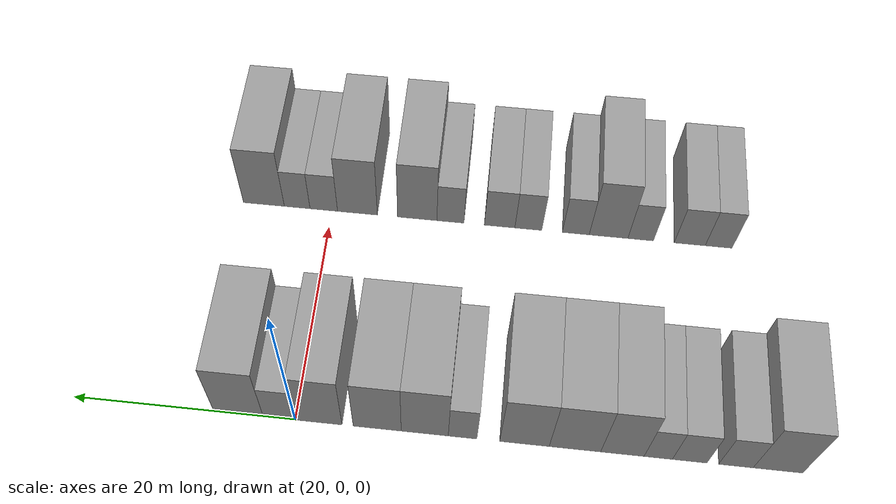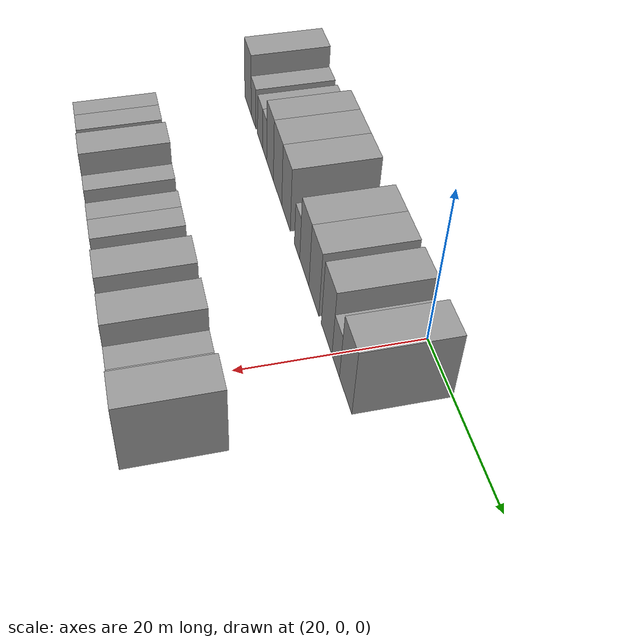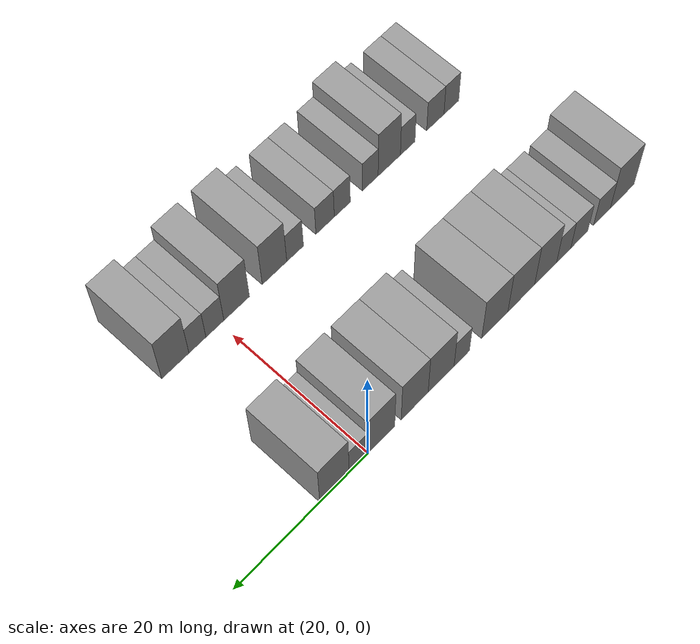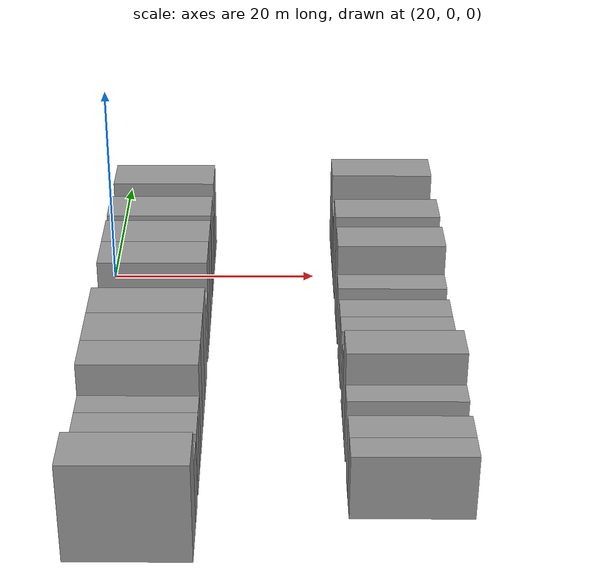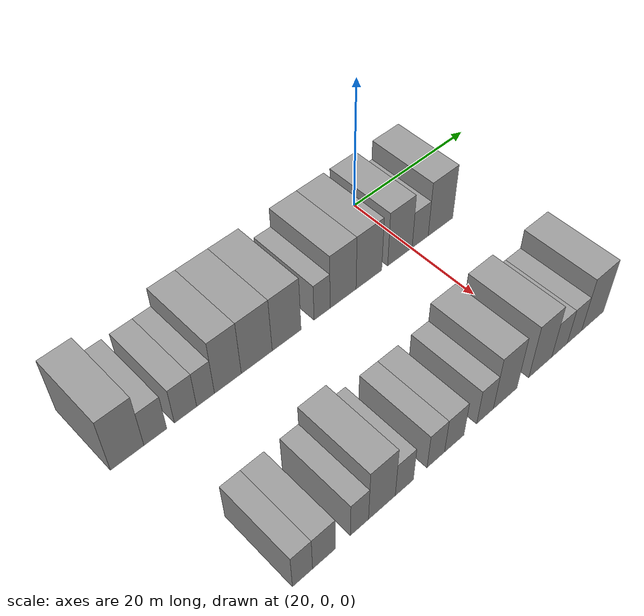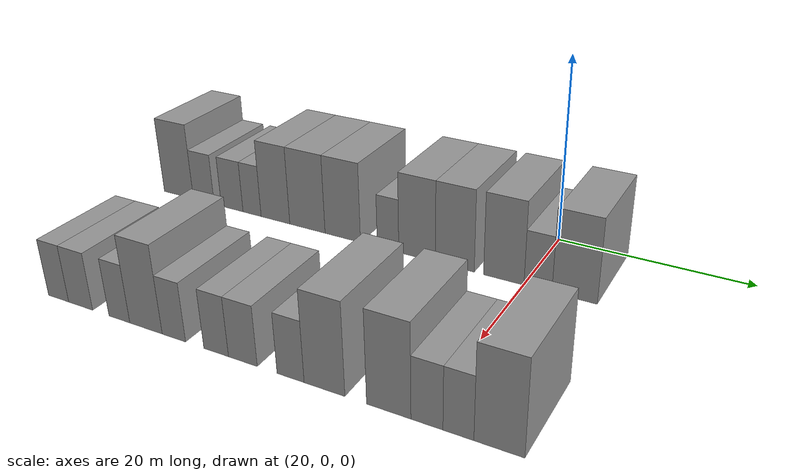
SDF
<sdf version="1.6">
 <world name="default">
  <model name="building_39">
   <static>1</static>
   <pose>25.0000 -42.1483 0 0.000000 0.000000 0.000000</pose>
   <link name="link">
    <pose>0 0 4.50 0 0 0</pose>
    <collision name="collision"><geometry><box><size>10.0000 4.2184 9.0000</size></box></geometry></collision>
    <visual name="visual">
     <cast_shadows>0</cast_shadows>
     <geometry><box><size>10.0000 4.2184 9.0000</size></box></geometry>
     <material>
      <script>
       <uri>model://grey_wall/materials/scripts</uri>
       <uri>model://grey_wall/materials/textures</uri>
       <name>vrc/grey_wall</name>
      </script>
     </material>
    </visual>
   </link>
  </model>
  <model name="building_40">
   <static>1</static>
   <pose>25.0000 -38.5617 0 0.000000 0.000000 0.000000</pose>
   <link name="link">
    <pose>0 0 3.00 0 0 0</pose>
    <collision name="collision"><geometry><box><size>10.0000 2.9548 6.0000</size></box></geometry></collision>
    <visual name="visual">
     <cast_shadows>0</cast_shadows>
     <geometry><box><size>10.0000 2.9548 6.0000</size></box></geometry>
     <material>
      <script>
       <uri>model://grey_wall/materials/scripts</uri>
       <uri>model://grey_wall/materials/textures</uri>
       <name>vrc/grey_wall</name>
      </script>
     </material>
    </visual>
   </link>
  </model>
  <model name="building_41">
   <static>1</static>
   <pose>25.0000 -34.5960 0 0.000000 0.000000 0.000000</pose>
   <link name="link">
    <pose>0 0 3.00 0 0 0</pose>
    <collision name="collision"><geometry><box><size>10.0000 2.9766 6.0000</size></box></geometry></collision>
    <visual name="visual">
     <cast_shadows>0</cast_shadows>
     <geometry><box><size>10.0000 2.9766 6.0000</size></box></geometry>
     <material>
      <script>
       <uri>model://grey_wall/materials/scripts</uri>
       <uri>model://grey_wall/materials/textures</uri>
       <name>vrc/grey_wall</name>
      </script>
     </material>
    </visual>
   </link>
  </model>
  <model name="building_42">
   <static>1</static>
   <pose>25.0000 -31.8885 0 0.000000 0.000000 0.000000</pose>
   <link name="link">
    <pose>0 0 3.00 0 0 0</pose>
    <collision name="collision"><geometry><box><size>10.0000 2.4384 6.0000</size></box></geometry></collision>
    <visual name="visual">
     <cast_shadows>0</cast_shadows>
     <geometry><box><size>10.0000 2.4384 6.0000</size></box></geometry>
     <material>
      <script>
       <uri>model://grey_wall/materials/scripts</uri>
       <uri>model://grey_wall/materials/textures</uri>
       <name>vrc/grey_wall</name>
      </script>
     </material>
    </visual>
   </link>
  </model>
  <model name="building_43">
   <static>1</static>
   <pose>25.0000 -28.7866 0 0.000000 0.000000 0.000000</pose>
   <link name="link">
    <pose>0 0 4.50 0 0 0</pose>
    <collision name="collision"><geometry><box><size>10.0000 3.7654 9.0000</size></box></geometry></collision>
    <visual name="visual">
     <cast_shadows>0</cast_shadows>
     <geometry><box><size>10.0000 3.7654 9.0000</size></box></geometry>
     <material>
      <script>
       <uri>model://grey_wall/materials/scripts</uri>
       <uri>model://grey_wall/materials/textures</uri>
       <name>vrc/grey_wall</name>
      </script>
     </material>
    </visual>
   </link>
  </model>
  <model name="building_44">
   <static>1</static>
   <pose>25.0000 -24.6649 0 0.000000 0.000000 0.000000</pose>
   <link name="link">
    <pose>0 0 4.50 0 0 0</pose>
    <collision name="collision"><geometry><box><size>10.0000 4.4779 9.0000</size></box></geometry></collision>
    <visual name="visual">
     <cast_shadows>0</cast_shadows>
     <geometry><box><size>10.0000 4.4779 9.0000</size></box></geometry>
     <material>
      <script>
       <uri>model://grey_wall/materials/scripts</uri>
       <uri>model://grey_wall/materials/textures</uri>
       <name>vrc/grey_wall</name>
      </script>
     </material>
    </visual>
   </link>
  </model>
  <model name="building_45">
   <static>1</static>
   <pose>25.0000 -20.2596 0 0.000000 0.000000 0.000000</pose>
   <link name="link">
    <pose>0 0 4.50 0 0 0</pose>
    <collision name="collision"><geometry><box><size>10.0000 4.3327 9.0000</size></box></geometry></collision>
    <visual name="visual">
     <cast_shadows>0</cast_shadows>
     <geometry><box><size>10.0000 4.3327 9.0000</size></box></geometry>
     <material>
      <script>
       <uri>model://grey_wall/materials/scripts</uri>
       <uri>model://grey_wall/materials/textures</uri>
       <name>vrc/grey_wall</name>
      </script>
     </material>
    </visual>
   </link>
  </model>
  <model name="building_46">
   <static>1</static>
   <pose>25.0000 -14.8365 0 0.000000 0.000000 0.000000</pose>
   <link name="link">
    <pose>0 0 3.00 0 0 0</pose>
    <collision name="collision"><geometry><box><size>10.0000 2.5137 6.0000</size></box></geometry></collision>
    <visual name="visual">
     <cast_shadows>0</cast_shadows>
     <geometry><box><size>10.0000 2.5137 6.0000</size></box></geometry>
     <material>
      <script>
       <uri>model://grey_wall/materials/scripts</uri>
       <uri>model://grey_wall/materials/textures</uri>
       <name>vrc/grey_wall</name>
      </script>
     </material>
    </visual>
   </link>
  </model>
  <model name="building_47">
   <static>1</static>
   <pose>25.0000 -11.5016 0 0.000000 0.000000 0.000000</pose>
   <link name="link">
    <pose>0 0 4.50 0 0 0</pose>
    <collision name="collision"><geometry><box><size>10.0000 4.1561 9.0000</size></box></geometry></collision>
    <visual name="visual">
     <cast_shadows>0</cast_shadows>
     <geometry><box><size>10.0000 4.1561 9.0000</size></box></geometry>
     <material>
      <script>
       <uri>model://grey_wall/materials/scripts</uri>
       <uri>model://grey_wall/materials/textures</uri>
       <name>vrc/grey_wall</name>
      </script>
     </material>
    </visual>
   </link>
  </model>
  <model name="building_48">
   <static>1</static>
   <pose>25.0000 -7.2964 0 0.000000 0.000000 0.000000</pose>
   <link name="link">
    <pose>0 0 4.50 0 0 0</pose>
    <collision name="collision"><geometry><box><size>10.0000 4.2544 9.0000</size></box></geometry></collision>
    <visual name="visual">
     <cast_shadows>0</cast_shadows>
     <geometry><box><size>10.0000 4.2544 9.0000</size></box></geometry>
     <material>
      <script>
       <uri>model://grey_wall/materials/scripts</uri>
       <uri>model://grey_wall/materials/textures</uri>
       <name>vrc/grey_wall</name>
      </script>
     </material>
    </visual>
   </link>
  </model>
  <model name="building_49">
   <static>1</static>
   <pose>25.0000 -2.0602 0 0.000000 0.000000 0.000000</pose>
   <link name="link">
    <pose>0 0 4.50 0 0 0</pose>
    <collision name="collision"><geometry><box><size>10.0000 4.2179 9.0000</size></box></geometry></collision>
    <visual name="visual">
     <cast_shadows>0</cast_shadows>
     <geometry><box><size>10.0000 4.2179 9.0000</size></box></geometry>
     <material>
      <script>
       <uri>model://grey_wall/materials/scripts</uri>
       <uri>model://grey_wall/materials/textures</uri>
       <name>vrc/grey_wall</name>
      </script>
     </material>
    </visual>
   </link>
  </model>
  <model name="building_50">
   <static>1</static>
   <pose>25.0000 1.4626 0 0.000000 0.000000 0.000000</pose>
   <link name="link">
    <pose>0 0 3.00 0 0 0</pose>
    <collision name="collision"><geometry><box><size>10.0000 2.8276 6.0000</size></box></geometry></collision>
    <visual name="visual">
     <cast_shadows>0</cast_shadows>
     <geometry><box><size>10.0000 2.8276 6.0000</size></box></geometry>
     <material>
      <script>
       <uri>model://grey_wall/materials/scripts</uri>
       <uri>model://grey_wall/materials/textures</uri>
       <name>vrc/grey_wall</name>
      </script>
     </material>
    </visual>
   </link>
  </model>
  <model name="building_51">
   <static>1</static>
   <pose>25.0000 5.0964 0 0.000000 0.000000 0.000000</pose>
   <link name="link">
    <pose>0 0 4.50 0 0 0</pose>
    <collision name="collision"><geometry><box><size>10.0000 4.4400 9.0000</size></box></geometry></collision>
    <visual name="visual">
     <cast_shadows>0</cast_shadows>
     <geometry><box><size>10.0000 4.4400 9.0000</size></box></geometry>
     <material>
      <script>
       <uri>model://grey_wall/materials/scripts</uri>
       <uri>model://grey_wall/materials/textures</uri>
       <name>vrc/grey_wall</name>
      </script>
     </material>
    </visual>
   </link>
  </model>
  <model name="building_142">
   <static>1</static>
   <pose>47.0000 -37.7682 0 0.000000 0.000000 0.000000</pose>
   <link name="link">
    <pose>0 0 3.00 0 0 0</pose>
    <collision name="collision"><geometry><box><size>10.0000 2.5685 6.0000</size></box></geometry></collision>
    <visual name="visual">
     <cast_shadows>0</cast_shadows>
     <geometry><box><size>10.0000 2.5685 6.0000</size></box></geometry>
     <material>
      <script>
       <uri>model://grey_wall/materials/scripts</uri>
       <uri>model://grey_wall/materials/textures</uri>
       <name>vrc/grey_wall</name>
      </script>
     </material>
    </visual>
   </link>
  </model>
  <model name="building_143">
   <static>1</static>
   <pose>47.0000 -34.9933 0 0.000000 0.000000 0.000000</pose>
   <link name="link">
    <pose>0 0 3.00 0 0 0</pose>
    <collision name="collision"><geometry><box><size>10.0000 2.9813 6.0000</size></box></geometry></collision>
    <visual name="visual">
     <cast_shadows>0</cast_shadows>
     <geometry><box><size>10.0000 2.9813 6.0000</size></box></geometry>
     <material>
      <script>
       <uri>model://grey_wall/materials/scripts</uri>
       <uri>model://grey_wall/materials/textures</uri>
       <name>vrc/grey_wall</name>
      </script>
     </material>
    </visual>
   </link>
  </model>
  <model name="building_144">
   <static>1</static>
   <pose>47.0000 -30.2642 0 0.000000 0.000000 0.000000</pose>
   <link name="link">
    <pose>0 0 3.00 0 0 0</pose>
    <collision name="collision"><geometry><box><size>10.0000 2.4768 6.0000</size></box></geometry></collision>
    <visual name="visual">
     <cast_shadows>0</cast_shadows>
     <geometry><box><size>10.0000 2.4768 6.0000</size></box></geometry>
     <material>
      <script>
       <uri>model://grey_wall/materials/scripts</uri>
       <uri>model://grey_wall/materials/textures</uri>
       <name>vrc/grey_wall</name>
      </script>
     </material>
    </visual>
   </link>
  </model>
  <model name="building_145">
   <static>1</static>
   <pose>47.0000 -27.1526 0 0.000000 0.000000 0.000000</pose>
   <link name="link">
    <pose>0 0 4.50 0 0 0</pose>
    <collision name="collision"><geometry><box><size>10.0000 3.7464 9.0000</size></box></geometry></collision>
    <visual name="visual">
     <cast_shadows>0</cast_shadows>
     <geometry><box><size>10.0000 3.7464 9.0000</size></box></geometry>
     <material>
      <script>
       <uri>model://grey_wall/materials/scripts</uri>
       <uri>model://grey_wall/materials/textures</uri>
       <name>vrc/grey_wall</name>
      </script>
     </material>
    </visual>
   </link>
  </model>
  <model name="building_146">
   <static>1</static>
   <pose>47.0000 -23.9708 0 0.000000 0.000000 0.000000</pose>
   <link name="link">
    <pose>0 0 3.00 0 0 0</pose>
    <collision name="collision"><geometry><box><size>10.0000 2.6172 6.0000</size></box></geometry></collision>
    <visual name="visual">
     <cast_shadows>0</cast_shadows>
     <geometry><box><size>10.0000 2.6172 6.0000</size></box></geometry>
     <material>
      <script>
       <uri>model://grey_wall/materials/scripts</uri>
       <uri>model://grey_wall/materials/textures</uri>
       <name>vrc/grey_wall</name>
      </script>
     </material>
    </visual>
   </link>
  </model>
  <model name="building_147">
   <static>1</static>
   <pose>47.0000 -19.3474 0 0.000000 0.000000 0.000000</pose>
   <link name="link">
    <pose>0 0 3.00 0 0 0</pose>
    <collision name="collision"><geometry><box><size>10.0000 2.6298 6.0000</size></box></geometry></collision>
    <visual name="visual">
     <cast_shadows>0</cast_shadows>
     <geometry><box><size>10.0000 2.6298 6.0000</size></box></geometry>
     <material>
      <script>
       <uri>model://grey_wall/materials/scripts</uri>
       <uri>model://grey_wall/materials/textures</uri>
       <name>vrc/grey_wall</name>
      </script>
     </material>
    </visual>
   </link>
  </model>
  <model name="building_148">
   <static>1</static>
   <pose>47.0000 -16.5390 0 0.000000 0.000000 0.000000</pose>
   <link name="link">
    <pose>0 0 3.00 0 0 0</pose>
    <collision name="collision"><geometry><box><size>10.0000 2.9870 6.0000</size></box></geometry></collision>
    <visual name="visual">
     <cast_shadows>0</cast_shadows>
     <geometry><box><size>10.0000 2.9870 6.0000</size></box></geometry>
     <material>
      <script>
       <uri>model://grey_wall/materials/scripts</uri>
       <uri>model://grey_wall/materials/textures</uri>
       <name>vrc/grey_wall</name>
      </script>
     </material>
    </visual>
   </link>
  </model>
  <model name="building_149">
   <static>1</static>
   <pose>47.0000 -11.7114 0 0.000000 0.000000 0.000000</pose>
   <link name="link">
    <pose>0 0 3.00 0 0 0</pose>
    <collision name="collision"><geometry><box><size>10.0000 2.6681 6.0000</size></box></geometry></collision>
    <visual name="visual">
     <cast_shadows>0</cast_shadows>
     <geometry><box><size>10.0000 2.6681 6.0000</size></box></geometry>
     <material>
      <script>
       <uri>model://grey_wall/materials/scripts</uri>
       <uri>model://grey_wall/materials/textures</uri>
       <name>vrc/grey_wall</name>
      </script>
     </material>
    </visual>
   </link>
  </model>
  <model name="building_150">
   <static>1</static>
   <pose>47.0000 -8.4365 0 0.000000 0.000000 0.000000</pose>
   <link name="link">
    <pose>0 0 4.50 0 0 0</pose>
    <collision name="collision"><geometry><box><size>10.0000 3.8819 9.0000</size></box></geometry></collision>
    <visual name="visual">
     <cast_shadows>0</cast_shadows>
     <geometry><box><size>10.0000 3.8819 9.0000</size></box></geometry>
     <material>
      <script>
       <uri>model://grey_wall/materials/scripts</uri>
       <uri>model://grey_wall/materials/textures</uri>
       <name>vrc/grey_wall</name>
      </script>
     </material>
    </visual>
   </link>
  </model>
  <model name="building_151">
   <static>1</static>
   <pose>47.0000 -2.5181 0 0.000000 0.000000 0.000000</pose>
   <link name="link">
    <pose>0 0 4.50 0 0 0</pose>
    <collision name="collision"><geometry><box><size>10.0000 3.9549 9.0000</size></box></geometry></collision>
    <visual name="visual">
     <cast_shadows>0</cast_shadows>
     <geometry><box><size>10.0000 3.9549 9.0000</size></box></geometry>
     <material>
      <script>
       <uri>model://grey_wall/materials/scripts</uri>
       <uri>model://grey_wall/materials/textures</uri>
       <name>vrc/grey_wall</name>
      </script>
     </material>
    </visual>
   </link>
  </model>
  <model name="building_152">
   <static>1</static>
   <pose>47.0000 0.8325 0 0.000000 0.000000 0.000000</pose>
   <link name="link">
    <pose>0 0 3.00 0 0 0</pose>
    <collision name="collision"><geometry><box><size>10.0000 2.7463 6.0000</size></box></geometry></collision>
    <visual name="visual">
     <cast_shadows>0</cast_shadows>
     <geometry><box><size>10.0000 2.7463 6.0000</size></box></geometry>
     <material>
      <script>
       <uri>model://grey_wall/materials/scripts</uri>
       <uri>model://grey_wall/materials/textures</uri>
       <name>vrc/grey_wall</name>
      </script>
     </material>
    </visual>
   </link>
  </model>
  <model name="building_153">
   <static>1</static>
   <pose>47.0000 3.4926 0 0.000000 0.000000 0.000000</pose>
   <link name="link">
    <pose>0 0 3.00 0 0 0</pose>
    <collision name="collision"><geometry><box><size>10.0000 2.5740 6.0000</size></box></geometry></collision>
    <visual name="visual">
     <cast_shadows>0</cast_shadows>
     <geometry><box><size>10.0000 2.5740 6.0000</size></box></geometry>
     <material>
      <script>
       <uri>model://grey_wall/materials/scripts</uri>
       <uri>model://grey_wall/materials/textures</uri>
       <name>vrc/grey_wall</name>
      </script>
     </material>
    </visual>
   </link>
  </model>
  <model name="building_154">
   <static>1</static>
   <pose>47.0000 6.8253 0 0.000000 0.000000 0.000000</pose>
   <link name="link">
    <pose>0 0 4.50 0 0 0</pose>
    <collision name="collision"><geometry><box><size>10.0000 4.0913 9.0000</size></box></geometry></collision>
    <visual name="visual">
     <cast_shadows>0</cast_shadows>
     <geometry><box><size>10.0000 4.0913 9.0000</size></box></geometry>
     <material>
      <script>
       <uri>model://grey_wall/materials/scripts</uri>
       <uri>model://grey_wall/materials/textures</uri>
       <name>vrc/grey_wall</name>
      </script>
     </material>
    </visual>
   </link>
  </model>
 </world>
</sdf>
